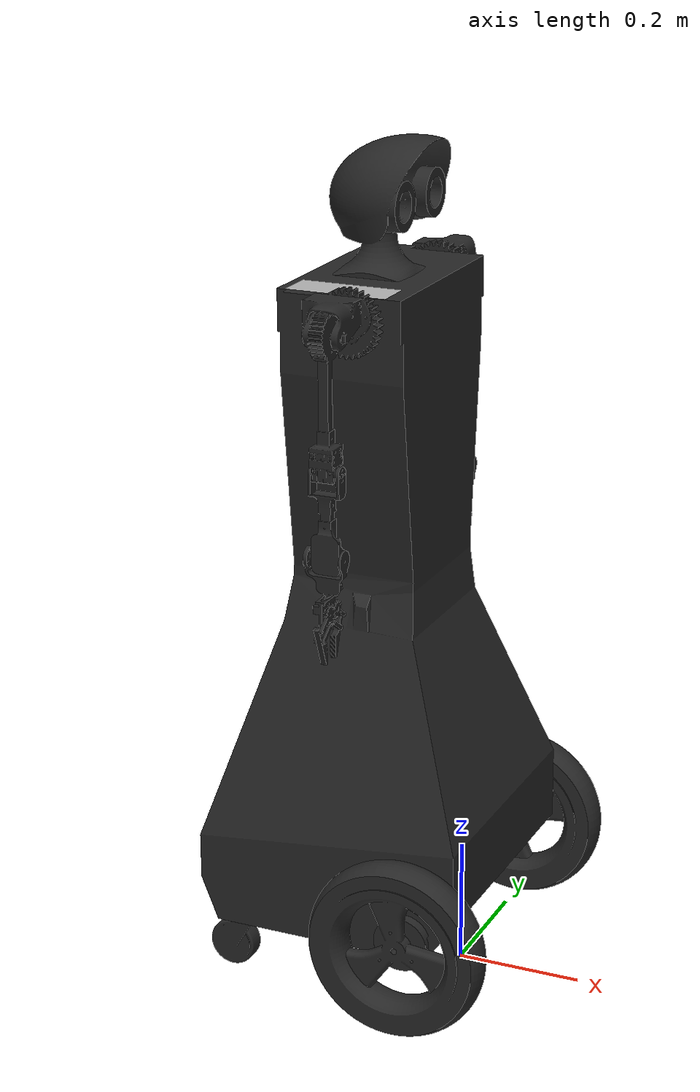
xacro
<?xml version="1.0" ?>
<robot name="roomac" xmlns:xacro="http://www.ros.org/wiki/xacro">

<!-- todo: standardize joint names -->

<material name="black">
  <color rgba="0.15 0.15 0.15 1.0"/>
</material>

<!-- BODY -->

<link name="base_link" />
<link name="base_footprint" />

<!-- Additional link needed to solve moveit warning (as far as I know it shouldn't cause any issue as I'm not using KDL, but still better to solve it): -->
<!-- The root link base_link has an inertia specified in the URDF, but KDL does not support a root link with an inertia.  As a workaround, you can add an extra dummy link to your URDF. -->
<link name="robot_body_link">
  <inertial>
    <origin xyz="-0.13821660856078213 0.0043835143674895525 0.42578889973861744" rpy="0 0 0"/>
    <mass value="12.267858710704742"/>
    <inertia ixx="0.720301" iyy="0.677932" izz="0.200987" ixy="4.5e-05" iyz="-0.003874" ixz="0.025748"/>
  </inertial>
  <visual>
    <origin xyz="0 0 0" rpy="0 0 0"/>
    <geometry>
      <mesh filename="package://roomac_description/meshes/robot_body.dae" scale="0.001 0.001 0.001"/>
    </geometry>
    <material name="black"/>
  </visual>
  <collision>
    <origin xyz="0 0 0" rpy="0 0 0"/>
    <geometry>
      <mesh filename="package://roomac_description/meshes/robot_body_collision.stl" scale="0.001 0.001 0.001"/>
    </geometry>
  </collision>
</link>

<link name="head_link">
  <inertial>
    <origin xyz="-0.057525587412925475 -6.228687900878637e-07 0.06845033639955778" rpy="0 0 0"/>
    <mass value="4.300223439076428"/>
    <inertia ixx="0.025424" iyy="0.022772" izz="0.013755" ixy="0.0" iyz="-0.0" ixz="-0.001476"/>
  </inertial>
  <visual>
    <origin xyz="0.08 -2.1e-05 -0.969145" rpy="0 0 0"/>
    <geometry>
      <mesh filename="package://roomac_description/meshes/head.dae" scale="0.001 0.001 0.001"/>
    </geometry>
    <material name="black"/>
  </visual>
  <collision>
    <origin xyz="0.08 -2.1e-05 -0.969145" rpy="0 0 0"/>
    <geometry>
      <mesh filename="package://roomac_description/meshes/head_collision.stl" scale="0.001 0.001 0.001"/>
    </geometry>
  </collision>
</link>

<joint name="base_joint" type="fixed">
  <origin rpy="0 0 0" xyz="0 0 0.145"/>
  <parent link="base_footprint"/>
  <child link="base_link"/>
</joint>

<joint name="robot_body_joint" type="fixed">
  <parent link="base_link"/>
  <child link="robot_body_link"/>
</joint>

<joint name="head_joint" type="fixed">
  <origin xyz="-0.08 2.1e-05 0.969145" rpy="0 0 0"/>
  <parent link="base_link"/>
  <child link="head_link"/>
</joint>

<!-- KINECT -->

<link name="camera_link" />
<joint name="kinect_joint" type="fixed">
  <!-- 0.03 comes from calibration - ground was slightly tilted and I calibrated it in rviz to be parallel  -->
  <origin rpy="0 ${(31.513/180.)*pi - 0.03} 0" xyz="-0.108561 0.039543 0.467024"/>
  <parent link="base_link"/>
  <child link="camera_link"/>
</joint>

<!-- IMU -->

<link name="imu_link" />
<joint name="imu_joint" type="fixed">
  <origin rpy="0 0 0" xyz="-0.09873 -0.0375 0.0305"/>
  <parent link="base_link"/>
  <child link="imu_link"/>
</joint>

<!-- ARTAG -->

<link name="artag_link" />

<link name="artag_bundle_visual_link">
  <visual>
    <origin rpy="0 0 0" xyz="0 0 0"/>
    <geometry>
      <mesh filename="package://roomac_description/meshes/artag_bundle.dae" scale="1 1 1"/>
    </geometry>
  </visual>
</link>

<joint name="artag_joint" type="fixed">
  <origin rpy="0 0 0" xyz="-0.149 -0.125 0.972"/>
  <parent link="base_link"/>
  <child link="artag_link"/>
</joint>

<joint name="artag_bundle_visual_joint" type="fixed">
  <origin rpy="0 0 0" xyz="0.01 0.0 0.0"/>
  <parent link="artag_link"/>
  <child link="artag_bundle_visual_link"/>
</joint>

<!-- CASTERS -->

<xacro:property name="caster_wheel_width" value="0.034" />
<xacro:property name="caster_wheel_radius" value="0.0375" />

<link name="caster_right_link">
  <inertial>
    <origin xyz="0.00355868425330208 -0.0279262663780577 -0.08858638249680677" rpy="0 0 0"/>
    <mass value="1.0173955553418546"/>
    <inertia ixx="0.000972" iyy="0.001208" izz="0.000477" ixy="-2e-06" iyz="-5e-06" ixz="-0.000233"/>
  </inertial>
  <visual>
    <origin xyz="0.324 -0.187 0.00465" rpy="0 0 0"/>
    <geometry>
      <mesh filename="package://roomac_description/meshes/caster.dae" scale="0.001 0.001 0.001"/>
    </geometry>
    <material name="black"/>
  </visual>
  <collision>
    <origin xyz="-0.001 -0.026 -0.10035" rpy="${pi/2.} 0 0"/>
    <geometry>
      <cylinder length="${caster_wheel_width}" radius="${caster_wheel_radius}"/>
    </geometry>
  </collision>
</link>

<link name="caster_left_link">
  <inertial>
    <origin xyz="0.0035586842533020246 0.02192626637805642 -0.0885863824968092" rpy="0 0 0"/>
    <mass value="1.0173955553418546"/>
    <inertia ixx="0.000972" iyy="0.001208" izz="0.000477" ixy="2e-06" iyz="5e-06" ixz="-0.000233"/>
  </inertial>
  <visual>
    <origin xyz="0.324 -0.139 0.00465" rpy="0 0 0"/>
    <geometry>
      <mesh filename="package://roomac_description/meshes/caster.dae" scale="0.001 0.001 0.001"/>
    </geometry>
    <material name="black"/>
  </visual>
  <collision>
    <origin xyz="-0.001 0.022 -0.10035" rpy="${pi/2.} 0 0"/>
    <geometry>
      <cylinder length="${caster_wheel_width}" radius="${caster_wheel_radius}"/>
    </geometry>
  </collision>
</link>

<joint name="caster_right_joint" type="fixed">
  <origin xyz="-0.324 -0.133 -0.00465" rpy="0 0 0"/>
  <parent link="base_link"/>
  <child link="caster_right_link"/>
</joint>

<joint name="caster_left_joint" type="fixed">
  <origin xyz="-0.324 0.139 -0.00465" rpy="0 0 0"/>
  <parent link="base_link"/>
  <child link="caster_left_link"/>
</joint>

<!-- WHEELS -->

<xacro:property name="wheel_width" value="0.062" />
<xacro:property name="wheel_radius" value="0.145" />
<xacro:property name="wheel_body_separation" value="0.01536" />

<link name="wheel_right_link">
  <inertial>
    <origin xyz="-8.535155939829862e-08 -0.045545810193822645 1.2324269625501287e-07" rpy="0 0 0"/>
    <mass value="2.752514069802561"/>
    <inertia ixx="0.01649" iyy="0.031597" izz="0.01649" ixy="0.0" iyz="-0.0" ixz="0.0"/>
  </inertial>
  <visual>
    <origin xyz="-0.0 0.21064 0.0" rpy="${pi} 0 0"/>
    <geometry>
      <mesh filename="package://roomac_description/meshes/wheel.dae" scale="0.001 0.001 0.001"/>
    </geometry>
    <material name="black"/>
  </visual>
  <collision>
    <origin xyz="0 ${-wheel_width/2. - wheel_body_separation} 0" rpy="${pi/2.} 0 0"/>
    <geometry>
      <cylinder length="${wheel_width}" radius="${wheel_radius}"/>
    </geometry>
  </collision>
</link>

<link name="wheel_left_link">
  <inertial>
    <origin xyz="-7.854137935392783e-08 0.039545809782175645 1.1633993854093376e-07" rpy="0 0 0"/>
    <mass value="2.7525139105402956"/>
    <inertia ixx="0.01649" iyy="0.031597" izz="0.01649" ixy="-0.0" iyz="0.0" ixz="0.0"/>
  </inertial>
  <visual>
    <origin xyz="0.0 -0.21064 0.0" rpy="0 0 0"/>
    <geometry>
      <mesh filename="package://roomac_description/meshes/wheel.dae" scale="0.001 0.001 0.001"/>
    </geometry>
    <material name="black"/>
  </visual>
  <collision>
    <origin xyz="0 ${wheel_width/2. + wheel_body_separation} 0" rpy="${pi/2.} 0 0"/>
    <geometry>
      <cylinder length="${wheel_width}" radius="${wheel_radius}"/>
    </geometry>
  </collision>
</link>

<joint name="wheel_right_joint" type="continuous">
  <origin xyz="0.0 -0.21064 0.0" rpy="0 0 0"/>
  <parent link="base_link"/>
  <child link="wheel_right_link"/>
  <axis xyz="0 1 0"/>
</joint>

<joint name="wheel_left_joint" type="continuous">
  <origin xyz="0.0 0.21064 0.0" rpy="0 0 0"/>
  <parent link="base_link"/>
  <child link="wheel_left_link"/>
  <axis xyz="0 1 0"/>
</joint>

<!-- RIGHT ARM -->

<link name="shoulder_right_link">
  <inertial>
    <origin xyz="-0.00456057320555428 -0.012787272244286635 0.0077144845604640855" rpy="0 0 0"/>
    <mass value="2.3807768899181916"/>
    <inertia ixx="0.00282" iyy="0.002455" izz="0.003055" ixy="-0.000114" iyz="0.000293" ixz="7.6e-05"/>
  </inertial>
  <visual>
    <origin xyz="0.1135 0.174979 -0.9345" rpy="0 0 0"/>
    <geometry>
      <mesh filename="package://roomac_description/meshes/shoulder_right.dae" scale="0.001 0.001 0.001"/>
    </geometry>
    <material name="black"/>
  </visual>
  <collision>
    <origin xyz="0.1135 0.174979 -0.9345" rpy="0 0 0"/>
    <geometry>
      <mesh filename="package://roomac_description/meshes/shoulder_right_collision.stl" scale="0.001 0.001 0.001"/>
    </geometry>
  </collision>
</link>

<link name="shoulder_elbow_right_link">
  <inertial>
    <origin xyz="-1.8144588477334023e-05 1.4016989058340812e-07 -0.08491558495824947" rpy="0 0 0"/>
    <mass value="1.0007451414955084"/>
    <inertia ixx="0.008299" iyy="0.0082" izz="0.000235" ixy="-0.0" iyz="0.0" ixz="3e-06"/>
  </inertial>
  <visual>
    <origin xyz="0.113 0.243979 -0.9345" rpy="0 0 0"/>
    <geometry>
      <mesh filename="package://roomac_description/meshes/shoulder_elbow_right.dae" scale="0.001 0.001 0.001"/>
    </geometry>
    <material name="black"/>
  </visual>
  <collision>
    <origin xyz="0.113 0.243979 -0.9345" rpy="0 0 0"/>
    <geometry>
      <mesh filename="package://roomac_description/meshes/shoulder_elbow_right_collision.stl" scale="0.001 0.001 0.001"/>
    </geometry>
  </collision>
</link>

<link name="elbow_wrist_right_link">
  <inertial>
    <origin xyz="-0.019371175261057735 -0.001202599027629786 -0.0924289033208664" rpy="0 0 0"/>
    <mass value="0.6102002908923237"/>
    <inertia ixx="0.00103" iyy="0.001092" izz="0.000114" ixy="0.0" iyz="-1.8e-05" ixz="-1e-05"/>
  </inertial>
  <visual>
    <origin xyz="0.0925 0.243979 -0.733425" rpy="0 0 0"/>
    <geometry>
      <mesh filename="package://roomac_description/meshes/elbow_wrist_right.dae" scale="0.001 0.001 0.001"/>
    </geometry>
    <material name="black"/>
  </visual>
  <collision>
    <origin xyz="0.0925 0.243979 -0.733425" rpy="0 0 0"/>
    <geometry>
      <mesh filename="package://roomac_description/meshes/elbow_wrist_right_collision.stl" scale="0.001 0.001 0.001"/>
    </geometry>
  </collision>
</link>

<link name="wrist_right_link">
  <inertial>
    <origin xyz="0.02427263159088841 -0.0008946909470901598 -0.023520404043236964" rpy="0 0 0"/>
    <mass value="0.15933052176631626"/>
    <inertia ixx="6.4e-05" iyy="0.000118" izz="6.6e-05" ixy="0.0" iyz="-2e-06" ixz="1.5e-05"/>
  </inertial>
  <visual>
    <origin xyz="0.139354 0.243979 -0.603583" rpy="0 0 0"/>
    <geometry>
      <mesh filename="package://roomac_description/meshes/wrist_right.dae" scale="0.001 0.001 0.001"/>
    </geometry>
    <material name="black"/>
  </visual>
  <collision>
    <origin xyz="0.139354 0.243979 -0.603583" rpy="0 0 0"/>
    <geometry>
      <mesh filename="package://roomac_description/meshes/wrist_right_collision.stl" scale="0.001 0.001 0.001"/>
    </geometry>
  </collision>
</link>

<link name="gripper_right_link">
  <inertial>
    <origin xyz="-0.00024163561260406863 0.0010341725235240573 -0.024005848417666398" rpy="0 0 0"/>
    <mass value="0.20788263258389922"/>
    <inertia ixx="8.7e-05" iyy="5.3e-05" izz="5.8e-05" ixy="4e-06" iyz="-1e-06" ixz="3e-06"/>
  </inertial>
  <visual>
    <origin xyz="0.114635 0.244052 -0.544791" rpy="0 0 0"/>
    <geometry>
      <mesh filename="package://roomac_description/meshes/gripper_right.dae" scale="0.001 0.001 0.001"/>
    </geometry>
    <material name="black"/>
  </visual>
  <collision>
    <origin xyz="0.114635 0.244052 -0.544791" rpy="0 0 0"/>
    <geometry>
      <mesh filename="package://roomac_description/meshes/gripper_right_collision.stl" scale="0.001 0.001 0.001"/>
    </geometry>
  </collision>
</link>

<!-- Point approximately in the middle between fingers, used as a position for gripping objects
  (in inverse kinematics this point should match objects position) -->
<link name="gripping_right_link"/>

<link name="gripper_finger_r_right_link">
  <inertial>
    <origin xyz="0.004500248654851852 0.005686730528388695 -0.011016022246636392" rpy="0 0 0"/>
    <mass value="0.03746064390067365"/>
    <inertia ixx="1.2e-05" iyy="1e-05" izz="2e-06" ixy="-0.0" iyz="4e-06" ixz="-0.0"/>
  </inertial>
  <visual>
    <origin xyz="0.117385 0.274314 -0.487684" rpy="0 0 0"/>
    <geometry>
      <mesh filename="package://roomac_description/meshes/gripper_finger_r_right.dae" scale="0.001 0.001 0.001"/>
    </geometry>
    <material name="black"/>
  </visual>
  <collision>
    <origin xyz="0.117385 0.274314 -0.487684" rpy="0 0 0"/>
    <geometry>
      <mesh filename="package://roomac_description/meshes/gripper_finger_r_right_collision.stl" scale="0.001 0.001 0.001"/>
    </geometry>
  </collision>
</link>

<link name="gripper_finger_l_right_link">
  <inertial>
    <origin xyz="0.0045002486085409105 -0.005494466341388893 -0.01111360012887036" rpy="0 0 0"/>
    <mass value="0.037460643900623564"/>
    <inertia ixx="1.2e-05" iyy="1e-05" izz="2e-06" ixy="-0.0" iyz="-4e-06" ixz="-0.0"/>
  </inertial>
  <visual>
    <origin xyz="0.117385 0.214585 -0.487684" rpy="0 0 0"/>
    <geometry>
      <mesh filename="package://roomac_description/meshes/gripper_finger_l_right.dae" scale="0.001 0.001 0.001"/>
    </geometry>
    <material name="black"/>
  </visual>
  <collision>
    <origin xyz="0.117385 0.214585 -0.487684" rpy="0 0 0"/>
    <geometry>
      <mesh filename="package://roomac_description/meshes/gripper_finger_l_right_collision.stl" scale="0.001 0.001 0.001"/>
    </geometry>
  </collision>
</link>

<!-- Values for effort and velocity are from example (they are required)
  not sure if correct, may need to change them -->
<joint name="shoulder_pitch_right_joint" type="revolute">
  <origin xyz="-0.1135 -0.174979 0.9345" rpy="0 0 0"/>
  <parent link="base_link"/>
  <child link="shoulder_right_link"/>
  <axis xyz="0 1 0"/>
  <limit effort="30" velocity="1.0" lower="-2.390" upper="0.489" />
</joint>

<joint name="shoulder_roll_right_joint" type="revolute">
  <origin xyz="0.0005 -0.069 0.0" rpy="0 0 0"/>
  <parent link="shoulder_right_link"/>
  <child link="shoulder_elbow_right_link"/>
  <axis xyz="-1 0 0"/>
  <!-- Calculated lower: -0.899, adjusted it due to colision with gear-->
  <limit effort="30" velocity="1.0" lower="-0.800" upper="1.979" />
</joint>

<joint name="elbow_right_joint" type="revolute">
  <origin xyz="0.0205 0.0 -0.201075" rpy="0 0 0"/>
  <parent link="shoulder_elbow_right_link"/>
  <child link="elbow_wrist_right_link"/>
  <axis xyz="1 0 0"/>
  <!-- Calculated lower: -2.879 upper: 2.879, adjusted due to collisions-->
  <!-- Safe values, might be some room for increase -->
  <limit effort="30" velocity="1.0" lower="-2.1" upper="2.1" />
</joint>

<joint name="wrist_right_joint" type="revolute">
  <origin xyz="-0.046854 0.0 -0.129842" rpy="0 0 0"/>
  <parent link="elbow_wrist_right_link"/>
  <child link="wrist_right_link"/>
  <axis xyz="-1 0 0"/>
  <limit effort="30" velocity="1.0" lower="-1.994" upper="1.146" />
</joint>

<joint name="gripper_twist_right_joint" type="revolute">
  <origin xyz="0.024719 -7.3e-05 -0.058792" rpy="0 0 0"/>
  <parent link="wrist_right_link"/>
  <child link="gripper_right_link"/>
  <axis xyz="0 0 -1"/>
  <limit effort="30" velocity="1.0" lower="-1.570" upper="1.570" />
</joint>

<joint name="gripper_finger_r_right_joint" type="prismatic">
  <origin xyz="-0.00275 -0.030262 -0.057107" rpy="0 0 0"/>
  <parent link="gripper_right_link"/>
  <child link="gripper_finger_r_right_link"/>
  <axis xyz="0 1 0"/>
  <limit effort="100" velocity="100" lower="-0.0045" upper="0.015"/>
</joint>

<joint name="gripper_finger_l_right_joint" type="prismatic">
  <origin xyz="-0.00275 0.029467 -0.057107" rpy="0 0 0"/>
  <parent link="gripper_right_link"/>
  <child link="gripper_finger_l_right_link"/>
  <axis xyz="0 1 0"/>
  <limit effort="100" velocity="100" lower="-0.015" upper="0.0045"/>
</joint>

<!-- todo: change it -->
<joint name="right_grip_joint" type="fixed">
  <origin rpy="0 0 0" xyz="0.0 0.0 -0.085"/>
  <parent link="gripper_right_link"/>
  <child link="gripping_right_link"/>
</joint>

<!-- LEFT ARM -->

<link name="shoulder_left_link">
  <inertial>
    <origin xyz="-0.004560577392501555 0.012787335699410651 0.007714466394341812" rpy="0 0 0"/>
    <mass value="2.380776527200545"/>
    <inertia ixx="0.00282" iyy="0.002455" izz="0.003055" ixy="0.000114" iyz="-0.000293" ixz="7.6e-05"/>
  </inertial>
  <visual>
    <origin xyz="0.1135 -0.175021 -0.9345" rpy="0 0 0"/>
    <geometry>
      <mesh filename="package://roomac_description/meshes/shoulder_left.dae" scale="0.001 0.001 0.001"/>
    </geometry>
    <material name="black"/>
  </visual>
  <collision>
    <origin xyz="0.1135 -0.175021 -0.9345" rpy="0 0 0"/>
    <geometry>
      <mesh filename="package://roomac_description/meshes/shoulder_left_collision.stl" scale="0.001 0.001 0.001"/>
    </geometry>
  </collision>
</link>

<link name="shoulder_elbow_left_link">
  <inertial>
    <origin xyz="-1.814433713719088e-05 -6.981540309758394e-08 -0.08491558344283501" rpy="0 0 0"/>
    <mass value="1.000745128308775"/>
    <inertia ixx="0.008299" iyy="0.0082" izz="0.000235" ixy="0.0" iyz="-0.0" ixz="3e-06"/>
  </inertial>
  <visual>
    <origin xyz="0.113 -0.244021 -0.9345" rpy="0 0 0"/>
    <geometry>
      <mesh filename="package://roomac_description/meshes/shoulder_elbow_left.dae" scale="0.001 0.001 0.001"/>
    </geometry>
    <material name="black"/>
  </visual>
  <collision>
    <origin xyz="0.113 -0.244021 -0.9345" rpy="0 0 0"/>
    <geometry>
      <mesh filename="package://roomac_description/meshes/shoulder_elbow_left_collision.stl" scale="0.001 0.001 0.001"/>
    </geometry>
  </collision>
</link>

<link name="elbow_wrist_left_link">
  <inertial>
    <origin xyz="-0.019371169403424968 0.0012026708698118505 -0.09242900740153548" rpy="0 0 0"/>
    <mass value="0.610199848603108"/>
    <inertia ixx="0.00103" iyy="0.001092" izz="0.000114" ixy="-0.0" iyz="1.8e-05" ixz="-1e-05"/>
  </inertial>
  <visual>
    <origin xyz="0.0925 -0.244021 -0.733443" rpy="0 0 0"/>
    <geometry>
      <mesh filename="package://roomac_description/meshes/elbow_wrist_left.dae" scale="0.001 0.001 0.001"/>
    </geometry>
    <material name="black"/>
  </visual>
  <collision>
    <origin xyz="0.0925 -0.244021 -0.733443" rpy="0 0 0"/>
    <geometry>
      <mesh filename="package://roomac_description/meshes/elbow_wrist_left_collision.stl" scale="0.001 0.001 0.001"/>
    </geometry>
  </collision>
</link>

<link name="wrist_left_link">
  <inertial>
    <origin xyz="0.02427263159088741 0.000894761301925201 -0.023520440865037795" rpy="0 0 0"/>
    <mass value="0.15933052176634832"/>
    <inertia ixx="6.4e-05" iyy="0.000118" izz="6.6e-05" ixy="-0.0" iyz="2e-06" ixz="1.5e-05"/>
  </inertial>
  <visual>
    <origin xyz="0.139354 -0.244021 -0.603601" rpy="0 0 0"/>
    <geometry>
      <mesh filename="package://roomac_description/meshes/wrist_left.dae" scale="0.001 0.001 0.001"/>
    </geometry>
    <material name="black"/>
  </visual>
  <collision>
    <origin xyz="0.139354 -0.244021 -0.603601" rpy="0 0 0"/>
    <geometry>
      <mesh filename="package://roomac_description/meshes/wrist_left_collision.stl" scale="0.001 0.001 0.001"/>
    </geometry>
  </collision>
</link>

<link name="gripper_left_link">
  <inertial>
    <origin xyz="-0.0002416356126049013 -0.0010341021686912366 -0.0240058852394609" rpy="0 0 0"/>
    <mass value="0.20788263258393214"/>
    <inertia ixx="8.7e-05" iyy="5.3e-05" izz="5.8e-05" ixy="-4e-06" iyz="1e-06" ixz="3e-06"/>
  </inertial>
  <visual>
    <origin xyz="0.114635 -0.244094 -0.544809" rpy="0 0 0"/>
    <geometry>
      <mesh filename="package://roomac_description/meshes/gripper_left.dae" scale="0.001 0.001 0.001"/>
    </geometry>
    <material name="black"/>
  </visual>
  <collision>
    <origin xyz="0.114635 -0.244094 -0.544809" rpy="0 0 0"/>
    <geometry>
      <mesh filename="package://roomac_description/meshes/gripper_left_collision.stl" scale="0.001 0.001 0.001"/>
    </geometry>
  </collision>
</link>

<link name="gripper_finger_l_left_link">
  <inertial>
    <origin xyz="0.004500248654850533 -0.005687660173556985 -0.011016059068434336" rpy="0 0 0"/>
    <mass value="0.03746064390066084"/>
    <inertia ixx="1.2e-05" iyy="1e-05" izz="2e-06" ixy="0.0" iyz="-4e-06" ixz="-0.0"/>
  </inertial>
  <visual>
    <origin xyz="0.117385 -0.274357 -0.487702" rpy="0 0 0"/>
    <geometry>
      <mesh filename="package://roomac_description/meshes/gripper_finger_l_left.dae" scale="0.001 0.001 0.001"/>
    </geometry>
    <material name="black"/>
  </visual>
  <collision>
    <origin xyz="0.117385 -0.274357 -0.487702" rpy="0 0 0"/>
    <geometry>
      <mesh filename="package://roomac_description/meshes/gripper_finger_l_left_collision.stl" scale="0.001 0.001 0.001"/>
    </geometry>
  </collision>
</link>

<link name="gripper_finger_r_left_link">
  <inertial>
    <origin xyz="0.0045002486085398 0.0054945366962241005 -0.011113636950655759" rpy="0 0 0"/>
    <mass value="0.03746064390060757"/>
    <inertia ixx="1.2e-05" iyy="1e-05" izz="2e-06" ixy="0.0" iyz="4e-06" ixz="-0.0"/>
  </inertial>
  <visual>
    <origin xyz="0.117385 -0.214627 -0.487702" rpy="0 0 0"/>
    <geometry>
      <mesh filename="package://roomac_description/meshes/gripper_finger_r_left.dae" scale="0.001 0.001 0.001"/>
    </geometry>
    <material name="black"/>
  </visual>
  <collision>
    <origin xyz="0.117385 -0.214627 -0.487702" rpy="0 0 0"/>
    <geometry>
      <mesh filename="package://roomac_description/meshes/gripper_finger_r_left_collision.stl" scale="0.001 0.001 0.001"/>
    </geometry>
  </collision>
</link>

<joint name="shoulder_pitch_left_joint" type="continuous">
  <origin xyz="-0.1135 0.175021 0.9345" rpy="0 0 0"/>
  <parent link="base_link"/>
  <child link="shoulder_left_link"/>
  <axis xyz="0 1 0"/>
</joint>

<joint name="shoulder_roll_left_joint" type="continuous">
  <origin xyz="0.0005 0.069 0.0" rpy="0 0 0"/>
  <parent link="shoulder_left_link"/>
  <child link="shoulder_elbow_left_link"/>
  <axis xyz="1 0 0"/>
</joint>

<joint name="elbow_left_joint" type="continuous">
  <origin xyz="0.0205 0.0 -0.201057" rpy="0 0 0"/>
  <parent link="shoulder_elbow_left_link"/>
  <child link="elbow_wrist_left_link"/>
  <axis xyz="1 0 0"/>
</joint>

<joint name="wrist_left_joint" type="continuous">
  <origin xyz="-0.046854 0.0 -0.129842" rpy="0 0 0"/>
  <parent link="elbow_wrist_left_link"/>
  <child link="wrist_left_link"/>
  <axis xyz="1 0 0"/>
</joint>

<joint name="gripper_twist_left_joint" type="continuous">
  <origin xyz="0.024719 7.3e-05 -0.058792" rpy="0 0 0"/>
  <parent link="wrist_left_link"/>
  <child link="gripper_left_link"/>
  <axis xyz="0 0 -1"/>
</joint>

<joint name="gripper_finger_r_left_joint" type="fixed">
  <origin xyz="-0.00275 -0.029467 -0.057107" rpy="0 0 0"/>
  <parent link="gripper_left_link"/>
  <child link="gripper_finger_r_left_link"/>
</joint>

<joint name="gripper_finger_l_left_joint" type="fixed">
  <origin xyz="-0.00275 0.030263 -0.057107" rpy="0 0 0"/>
  <parent link="gripper_left_link"/>
  <child link="gripper_finger_l_left_link"/>
</joint>

</robot>
